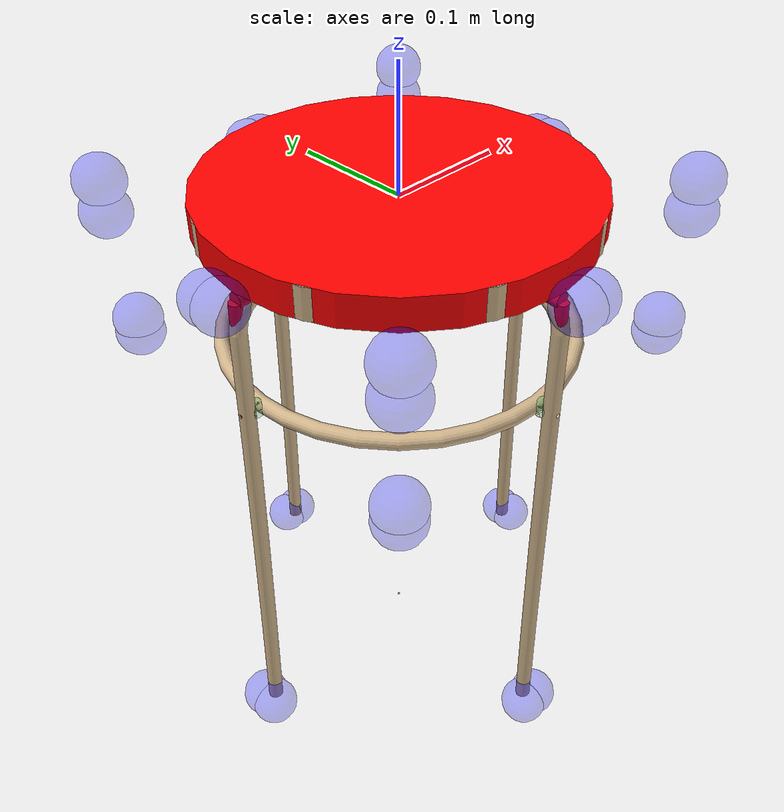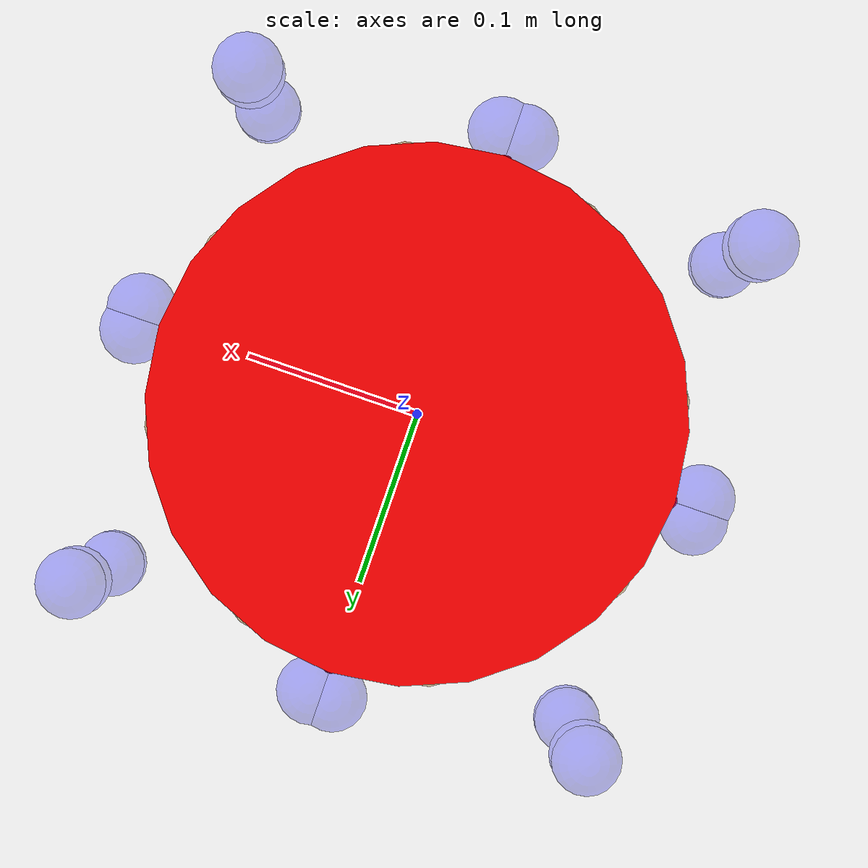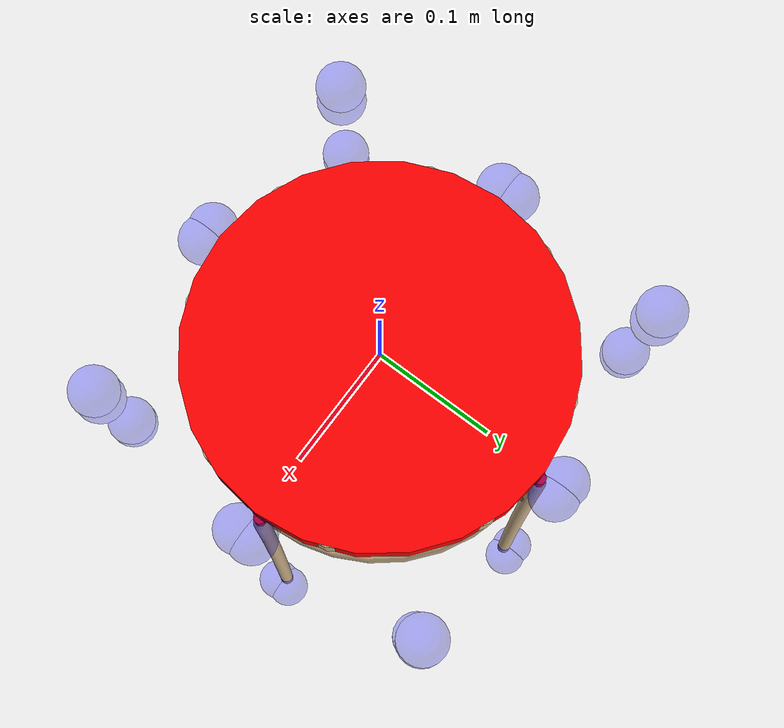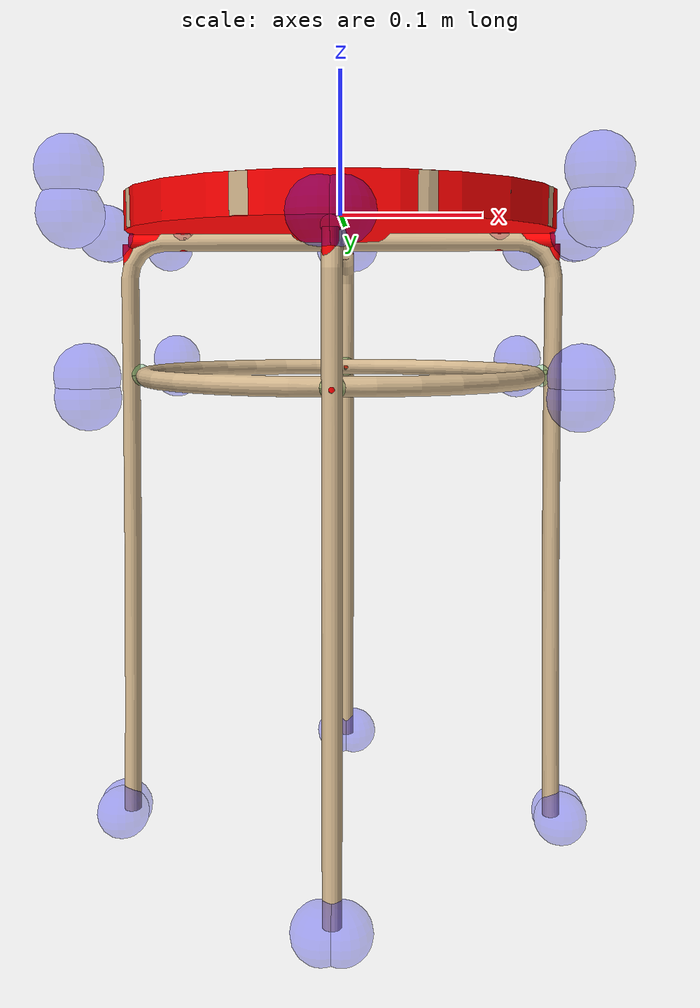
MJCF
<mujoco model="chair_agne_0010">
  <asset>
    <mesh file="chair_agne_0010/0.stl" name="part0" scale="0.001 0.001 0.001" />
    <mesh file="chair_agne_0010/3.stl" name="part3" scale="0.001 0.001 0.001" />
    <mesh file="chair_agne_0010/2.stl" name="part2" scale="0.001 0.001 0.001" />
    <mesh file="chair_agne_0010/1.stl" name="part1" scale="0.001 0.001 0.001" />
  </asset>
  <equality>
    <weld active="false" body1="0_part0" body2="2_part2" solimp="1 1 0.5" solref="0.01 0.3" />
    <weld active="false" body1="0_part0" body2="3_part3" solimp="1 1 0.5" solref="0.01 0.3" />
    <weld active="false" body1="1_part1" body2="2_part2" solimp="1 1 0.5" solref="0.01 0.3" />
    <weld active="false" body1="1_part1" body2="3_part3" solimp="1 1 0.5" solref="0.01 0.3" />
    <weld active="false" body1="0_part0" body2="2_part2" solimp="1 1 0.5" solref="0.01 0.3" />
    <weld active="false" body1="0_part0" body2="3_part3" solimp="1 1 0.5" solref="0.01 0.3" />
    <weld active="false" body1="2_part2" body2="1_part1" solimp="1 1 0.5" solref="0.01 0.3" />
    <weld active="false" body1="3_part3" body2="1_part1" solimp="1 1 0.5" solref="0.01 0.3" />
  </equality>
  <worldbody>
    <body name="0_part0" pos="-0.0 -0.0 1e-10" quat="1 0 0 0">
      <geom conaffinity="0" contype="0" density="0" mesh="part0" name="0_part0_mesh" pos="0.0 0.0 0.0" rgba="0.82 0.71 0.55 1" type="mesh" />
      <site name="0_part0_horizontal_radius_site" pos="-0.0 -0.0 1e-10" quat="1 0 0 0" rgba="0 0 1 0.3" size="0.001" />
      <site name="0_part0_top_site" pos="0.0 0.0 0.0127000001" quat="1 0 0 0" rgba="0 0 1 0.3" size="0.001" />
      <site name="0_part0_bottom_site" pos="0.0 0.0 -0.0126999999" quat="1 0 0 0" rgba="0 0 1 0.3" size="0.001" />
      <site name="0_part0_corner_site8" pos="-0.1524 0.1524 0.0127000001" quat="1 0 0 0" rgba="0 0 1 0.3" size="0.02" />
      <site name="0_part0_corner_site7" pos="0.1524 0.1524 0.0127000001" quat="1 0 0 0" rgba="0 0 1 0.3" size="0.02" />
      <site name="0_part0_corner_site6" pos="0.1524 -0.1524 0.0127000001" quat="1 0 0 0" rgba="0 0 1 0.3" size="0.02" />
      <site name="0_part0_corner_site5" pos="-0.1524 -0.1524 0.0127000001" quat="1 0 0 0" rgba="0 0 1 0.3" size="0.02" />
      <site name="0_part0_corner_site4" pos="-0.1524 0.1524 -0.0126999999" quat="1 0 0 0" rgba="0 0 1 0.3" size="0.02" />
      <site name="0_part0_corner_site3" pos="0.1524 0.1524 -0.0126999999" quat="1 0 0 0" rgba="0 0 1 0.3" size="0.02" />
      <site name="0_part0_corner_site2" pos="0.1524 -0.1524 -0.0126999999" quat="1 0 0 0" rgba="0 0 1 0.3" size="0.02" />
      <site name="0_part0_corner_site1" pos="-0.1524 -0.1524 -0.0126999999" quat="1 0 0 0" rgba="0 0 1 0.3" size="0.02" />
      <site name="top-leg,0,180,conn_site4" pos="-0.00010399 0.113 -0.01271297" quat="0.7071067 0 0 0.7071068" rgba="0.9019 0.0980 0.2941 0.3" size="0.008" />
      <site name="top-leg,0,180,conn_site3" pos="-0.00010399 -0.113 -0.01271297" quat="0.7071067 0 0 -0.7071068" rgba="0.9019 0.0980 0.2941 0.3" size="0.008" />
      <site name="top-leg,0,180,conn_site2" pos="0.113 -2.74e-06 -0.01271297" quat="1 0 0 0" rgba="0.9019 0.0980 0.2941 0.3" size="0.008" />
      <site name="top-leg,0,180,conn_site1" pos="-0.113 -2.74e-06 -0.01271297" quat="1 0 0 0" rgba="0.9019 0.0980 0.2941 0.3" size="0.008" />
      <geom density="50" name="noviz_collision_0_part0_0" pos="-1.57e-06 0.0 -4.7079999999999996e-05" quat="1 0 0 0" rgba="1 0 0 1" size="0.15239840000000002 0.013000000000000001" solref="0.001 1" type="cylinder" />
    </body>
    <body name="3_part3" pos="-0.0002079729 6.3894e-06 -0.2319651356" quat="1 0 0 0">
      <geom conaffinity="0" contype="0" density="0" mesh="part3" name="3_part3_mesh" pos="0.0 0.0 0.0" rgba="0.82 0.71 0.55 1" type="mesh" />
      <site name="3_part3_horizontal_radius_site" pos="0.0 0.0 0.0" quat="1 0 0 0" rgba="0 0 1 0.3" size="0.001" />
      <site name="3_part3_top_site" pos="0.0 0.0 0.2192391968" quat="1 0 0 0" rgba="0 0 1 0.3" size="0.001" />
      <site name="3_part3_bottom_site" pos="0.0 0.0 -0.2192391968" quat="1 0 0 0" rgba="0 0 1 0.3" size="0.001" />
      <site name="3_part3_corner_site8" pos="-0.0063315367 0.1681362222 0.2192391968" quat="1 0 0 0" rgba="0 0 1 0.3" size="0.02" />
      <site name="3_part3_corner_site7" pos="0.0063315367 0.1681362222 0.2192391968" quat="1 0 0 0" rgba="0 0 1 0.3" size="0.02" />
      <site name="3_part3_corner_site6" pos="0.0063315367 -0.1681362222 0.2192391968" quat="1 0 0 0" rgba="0 0 1 0.3" size="0.02" />
      <site name="3_part3_corner_site5" pos="-0.0063315367 -0.1681362222 0.2192391968" quat="1 0 0 0" rgba="0 0 1 0.3" size="0.02" />
      <site name="3_part3_corner_site4" pos="-0.0063315367 0.1681362222 -0.2192391968" quat="1 0 0 0" rgba="0 0 1 0.3" size="0.02" />
      <site name="3_part3_corner_site3" pos="0.0063315367 0.1681362222 -0.2192391968" quat="1 0 0 0" rgba="0 0 1 0.3" size="0.02" />
      <site name="3_part3_corner_site2" pos="0.0063315367 -0.1681362222 -0.2192391968" quat="1 0 0 0" rgba="0 0 1 0.3" size="0.02" />
      <site name="3_part3_corner_site1" pos="-0.0063315367 -0.1681362222 -0.2192391968" quat="1 0 0 0" rgba="0 0 1 0.3" size="0.02" />
      <site name="leg-top,0,180,conn_site4" pos="0.00010399 0.1129936 0.21925219999999998" quat="0.7071067 0 0 0.7071068" rgba="0.9019 0.0980 0.2941 0.3" size="0.008" />
      <site name="leg-top,0,180,conn_site3" pos="0.00010399 -0.1130064 0.21925219999999998" quat="0.7071067 0 0 -0.7071068" rgba="0.9019 0.0980 0.2941 0.3" size="0.008" />
      <site name="leg-circle,0,180,conn_site2" pos="2.69e-06 -0.1465064 0.1179651" quat="-0.5 0.5 -0.5 -0.5" rgba="0.2352 0.7058 0.2941 0.3" size="0.008" />
      <site name="leg-circle,0,180,conn_site1" pos="2.69e-06 0.1459936 0.1179651" quat="0.5 0.5 0.5 -0.5" rgba="0.2352 0.7058 0.2941 0.3" size="0.008" />
      <geom density="50" name="noviz_collision_3_part3_0" pos="-0.0009281199999999999 -0.1564608 -0.0035348700000000003" quat="0.7083899 -0.007634987 0.007663675 0.7057384" rgba="1 0 0 1" size="0.005 0.215" solref="0.001 1" type="cylinder" />
      <geom density="50" name="noviz_collision_3_part3_1" pos="0.00024529 0.1564371 -0.0035348700000000003" quat="0.7083899 0.007637098 -0.007665789 0.7057383" rgba="1 0 0 1" size="0.005 0.215" solref="0.001 1" type="cylinder" />
      <geom density="50" name="noviz_collision_3_part3_2" pos="1.282e-05 0.09443761 0.21286510000000003" quat="0.5009366 -0.4990616 0.5009367 0.4990616" rgba="1 0 0 1" size="0.006 0.058" solref="0.001 1" type="cylinder" />
      <geom density="50" name="noviz_collision_3_part3_3" pos="-0.0006925900000000001 -0.09366106 0.21286510000000003" quat="0.5009366 -0.4990616 0.5009367 0.4990616" rgba="1 0 0 1" size="0.006 0.058" solref="0.001 1" type="cylinder" />
      <geom density="50" name="noviz_collision_3_part3_4" pos="-0.00275958 -0.00365268 0.2152651" quat="0.5009366 -0.4990616 0.5009367 0.4990616" rgba="1 0 0 1" size="0.0025 0.04" solref="0.001 1" type="cylinder" />
      <geom density="50" name="noviz_collision_3_part3_5" pos="0.00134039 -0.0036680600000000003 0.2152651" quat="0.5009366 -0.4990616 0.5009367 0.4990616" rgba="1 0 0 1" size="0.0025 0.04" solref="0.001 1" type="cylinder" />
    </body>
    <body name="2_part2" pos="-0.0002089899 -5.4795e-06 -0.2319651356" quat="1 0 0 0">
      <geom conaffinity="0" contype="0" density="0" mesh="part2" name="2_part2_mesh" pos="0.0 0.0 0.0" rgba="0.82 0.71 0.55 1" type="mesh" />
      <site name="2_part2_horizontal_radius_site" pos="-0.0 0.0 0.0" quat="1 0 0 0" rgba="0 0 1 0.3" size="0.001" />
      <site name="2_part2_top_site" pos="0.0 0.0 0.2192391968" quat="1 0 0 0" rgba="0 0 1 0.3" size="0.001" />
      <site name="2_part2_bottom_site" pos="0.0 0.0 -0.2192391968" quat="1 0 0 0" rgba="0 0 1 0.3" size="0.001" />
      <site name="2_part2_corner_site8" pos="-0.1681362222 0.0063264469 0.2192391968" quat="1 0 0 0" rgba="0 0 1 0.3" size="0.02" />
      <site name="2_part2_corner_site7" pos="0.1681362222 0.0063264469 0.2192391968" quat="1 0 0 0" rgba="0 0 1 0.3" size="0.02" />
      <site name="2_part2_corner_site6" pos="0.1681362222 -0.0063264469 0.2192391968" quat="1 0 0 0" rgba="0 0 1 0.3" size="0.02" />
      <site name="2_part2_corner_site5" pos="-0.1681362222 -0.0063264469 0.2192391968" quat="1 0 0 0" rgba="0 0 1 0.3" size="0.02" />
      <site name="2_part2_corner_site4" pos="-0.1681362222 0.0063264469 -0.2192391968" quat="1 0 0 0" rgba="0 0 1 0.3" size="0.02" />
      <site name="2_part2_corner_site3" pos="0.1681362222 0.0063264469 -0.2192391968" quat="1 0 0 0" rgba="0 0 1 0.3" size="0.02" />
      <site name="2_part2_corner_site2" pos="0.1681362222 -0.0063264469 -0.2192391968" quat="1 0 0 0" rgba="0 0 1 0.3" size="0.02" />
      <site name="2_part2_corner_site1" pos="-0.1681362222 -0.0063264469 -0.2192391968" quat="1 0 0 0" rgba="0 0 1 0.3" size="0.02" />
      <site name="leg-top,0,180,conn_site2" pos="0.113209 2.74e-06 0.21925219999999998" quat="1 0 0 0" rgba="0.9019 0.0980 0.2941 0.3" size="0.008" />
      <site name="leg-top,0,180,conn_site1" pos="-0.112791 2.74e-06 0.21925219999999998" quat="1 0 0 0" rgba="0.9019 0.0980 0.2941 0.3" size="0.008" />
      <site name="leg-circle,0,180,conn_site4" pos="-0.146991 2.74e-06 0.1179651" quat="0.7071067 0 0.7071068 0" rgba="0.2352 0.7058 0.2941 0.3" size="0.008" />
      <site name="leg-circle,0,180,conn_site3" pos="0.146509 2.74e-06 0.1179651" quat="0 0.7071068 0 -0.7071067" rgba="0.2352 0.7058 0.2941 0.3" size="0.008" />
      <geom density="50" name="noviz_collision_2_part2_0" pos="-0.156791 9.5e-07 -0.0035348700000000003" quat="0.9999415 0 0.0108178 0" rgba="1 0 0 1" size="0.005 0.215" solref="0.001 1" type="cylinder" />
      <geom density="50" name="noviz_collision_2_part2_1" pos="0.15610900000000003 9.5e-07 -0.0035348700000000003" quat="0.9999415 0 -0.0108208 0" rgba="1 0 0 1" size="0.005 0.215" solref="0.001 1" type="cylinder" />
      <geom density="50" name="noviz_collision_2_part2_2" pos="0.09410899 9.5e-07 0.21286510000000003" quat="0.7071067 0 0.7071068 0" rgba="1 0 0 1" size="0.006 0.058" solref="0.001 1" type="cylinder" />
      <geom density="50" name="noviz_collision_2_part2_3" pos="-0.093991 9.5e-07 0.21286510000000003" quat="0.7071067 0 0.7071068 0" rgba="1 0 0 1" size="0.006 0.058" solref="0.001 1" type="cylinder" />
      <geom density="50" name="noviz_collision_2_part2_4" pos="-0.0039910100000000006 0.0024054799999999998 0.20986510000000003" quat="0.7071067 0 0.7071068 0" rgba="1 0 0 1" size="0.0025 0.04" solref="0.001 1" type="cylinder" />
      <geom density="50" name="noviz_collision_2_part2_5" pos="-0.0039910100000000006 -0.0016945200000000001 0.20986510000000003" quat="0.7071067 0 0.7071068 0" rgba="1 0 0 1" size="0.0025 0.04" solref="0.001 1" type="cylinder" />
    </body>
    <body name="1_part1" pos="-0.0002026006 1e-08 -0.1137324524" quat="1 0 0 0">
      <geom conaffinity="1" contype="1" density="50" mesh="part1" name="1_part1_mesh" pos="0.0 0.0 0.0" rgba="0.82 0.71 0.55 1" type="mesh" />
      <site name="1_part1_horizontal_radius_site" pos="-0.0 -0.0 0.0" quat="1 0 0 0" rgba="0 0 1 0.3" size="0.001" />
      <site name="1_part1_top_site" pos="0.0 0.0 0.0063133062" quat="1 0 0 0" rgba="0 0 1 0.3" size="0.001" />
      <site name="1_part1_bottom_site" pos="0.0 0.0 -0.0063133062" quat="1 0 0 0" rgba="0 0 1 0.3" size="0.001" />
      <site name="1_part1_corner_site8" pos="-0.1468774807 0.146877493 0.0063133062" quat="1 0 0 0" rgba="0 0 1 0.3" size="0.02" />
      <site name="1_part1_corner_site7" pos="0.1468774807 0.146877493 0.0063133062" quat="1 0 0 0" rgba="0 0 1 0.3" size="0.02" />
      <site name="1_part1_corner_site6" pos="0.1468774807 -0.146877493 0.0063133062" quat="1 0 0 0" rgba="0 0 1 0.3" size="0.02" />
      <site name="1_part1_corner_site5" pos="-0.1468774807 -0.146877493 0.0063133062" quat="1 0 0 0" rgba="0 0 1 0.3" size="0.02" />
      <site name="1_part1_corner_site4" pos="-0.1468774807 0.146877493 -0.0063133062" quat="1 0 0 0" rgba="0 0 1 0.3" size="0.02" />
      <site name="1_part1_corner_site3" pos="0.1468774807 0.146877493 -0.0063133062" quat="1 0 0 0" rgba="0 0 1 0.3" size="0.02" />
      <site name="1_part1_corner_site2" pos="0.1468774807 -0.146877493 -0.0063133062" quat="1 0 0 0" rgba="0 0 1 0.3" size="0.02" />
      <site name="1_part1_corner_site1" pos="-0.1468774807 -0.146877493 -0.0063133062" quat="1 0 0 0" rgba="0 0 1 0.3" size="0.02" />
      <site name="circle-leg,0,180,conn_site4" pos="-0.1469974 -2.74e-06 -0.00026755" quat="0.7071067 0 0.7071068 0" rgba="0.2352 0.7058 0.2941 0.3" size="0.008" />
      <site name="circle-leg,0,180,conn_site3" pos="0.1465026 -2.74e-06 -0.00026755" quat="0 0.7071068 0 -0.7071067" rgba="0.2352 0.7058 0.2941 0.3" size="0.008" />
      <site name="circle-leg,0,180,conn_site2" pos="-2.69e-06 -0.1465 -0.00026755" quat="-0.5 0.5 -0.5 -0.5" rgba="0.2352 0.7058 0.2941 0.3" size="0.008" />
      <site name="circle-leg,0,180,conn_site1" pos="-2.69e-06 0.146 -0.00026755" quat="0.5 0.5 0.5 -0.5" rgba="0.2352 0.7058 0.2941 0.3" size="0.008" />
    </body>
  </worldbody>
</mujoco>
